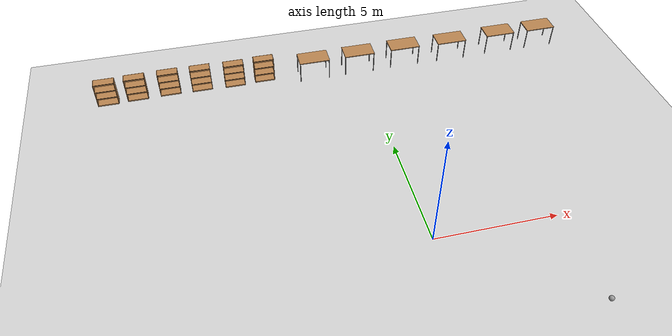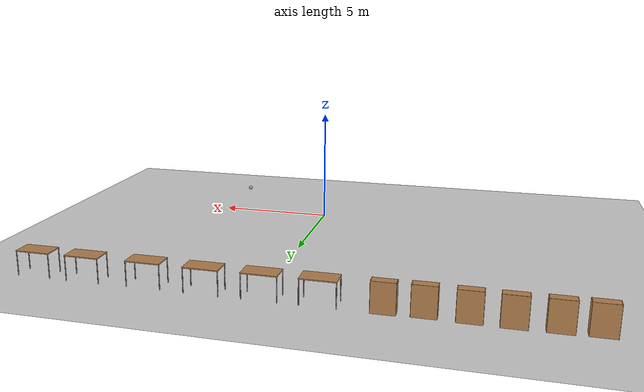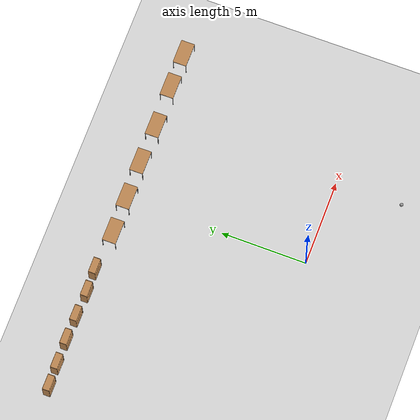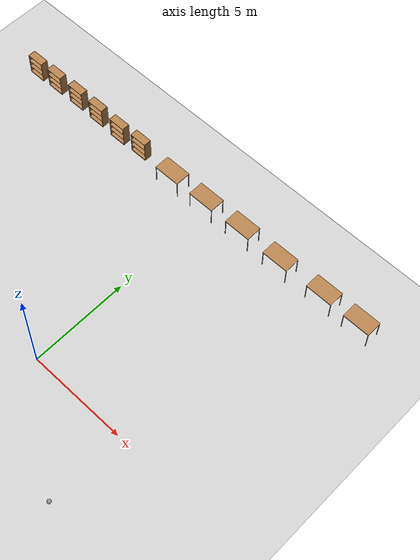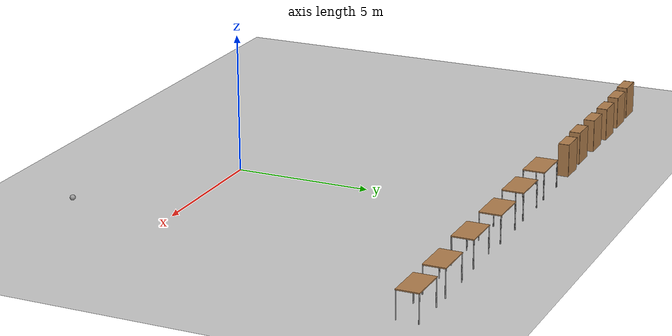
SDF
<sdf version="1.6">
 <world name="default">
  <model name="ground_plane">
   <static>1</static>
   <link name="link">
    <collision name="collision">
     <geometry><plane><normal>0 0 1</normal><size>100 100</size></plane></geometry>
     <surface><friction><ode><mu>100</mu><mu2>50</mu2></ode></friction></surface>
    </collision>
    <visual name="visual">
     <cast_shadows>0</cast_shadows>
     <geometry><plane><normal>0 0 1</normal><size>100 100</size></plane></geometry>
     <material>
      <script><uri>file://media/materials/scripts/gazebo.material</uri><name>Gazebo/Grey</name></script>
     </material>
    </visual>
   </link>
  </model>
  <model name="Untitled">
   <link name="link_0">
    <inertial>
     <mass>1</mass>
     <inertia><ixx>0.1</ixx><ixy>0</ixy><ixz>0</ixz><iyy>0.1</iyy><iyz>0</iyz><izz>0.1</izz></inertia>
    </inertial>
    <visual name="visual">
     <geometry><sphere><radius>0.1</radius></sphere></geometry>
     <material>
      <lighting>1</lighting>
      <script><uri>file://media/materials/scripts/gazebo.material</uri><name>Gazebo/Grey</name></script>
      <ambient>1 1 1 1</ambient>
      <diffuse>1 1 1 1</diffuse>
      <specular>1 1 1 1</specular>
      <emissive>1 1 1 1</emissive>
      <shader type="vertex"><normal_map>__default__</normal_map></shader>
     </material>
    </visual>
    <collision name="collision">
     <geometry><sphere><radius>0.1</radius></sphere></geometry>
     <surface>
      <friction>
       <ode><mu>1</mu><mu2>1</mu2><fdir1>0 0 0</fdir1><slip1>0</slip1><slip2>0</slip2></ode>
       <torsional>
        <coefficient>1</coefficient>
        <patch_radius>0</patch_radius>
        <surface_radius>0</surface_radius>
        <use_patch_radius>1</use_patch_radius>
        <ode><slip>0</slip></ode>
       </torsional>
      </friction>
      <bounce><restitution_coefficient>0</restitution_coefficient><threshold>1e+06</threshold></bounce>
      <contact>
       <collide_without_contact>0</collide_without_contact>
       <collide_without_contact_bitmask>1</collide_without_contact_bitmask>
       <collide_bitmask>1</collide_bitmask>
       <ode>
        <soft_cfm>0</soft_cfm>
        <soft_erp>0.2</soft_erp>
        <kp>1e+13</kp>
        <kd>1</kd>
        <max_vel>0.01</max_vel>
        <min_depth>0</min_depth>
       </ode>
       <bullet>
        <split_impulse>1</split_impulse>
        <split_impulse_penetration_threshold>-0.01</split_impulse_penetration_threshold>
        <soft_cfm>0</soft_cfm>
        <soft_erp>0.2</soft_erp>
        <kp>1e+13</kp>
        <kd>1</kd>
       </bullet>
      </contact>
     </surface>
    </collision>
   </link>
   <static>0</static>
   <pose>5.06703 -3.86628 0.1 0 -0 0</pose>
  </model>
  <model name="building"><pose>-3.25886 19.1437 0 0 -0 0</pose><static>1</static></model>
  <model name="bookshelf">
   <static>1</static>
   <link name="link">
    <inertial><mass>1</mass></inertial>
    <collision name="back">
     <pose>0 0.005 0.6 0 -0 0</pose>
     <geometry><box><size>0.9 0.01 1.2</size></box></geometry>
    </collision>
    <visual name="visual1">
     <pose>0 0.005 0.6 0 -0 0</pose>
     <geometry><box><size>0.9 0.01 1.2</size></box></geometry>
     <material>
      <script><uri>file://media/materials/scripts/gazebo.material</uri><name>Gazebo/Wood</name></script>
     </material>
    </visual>
    <collision name="left_side">
     <pose>0.45 -0.195 0.6 0 -0 0</pose>
     <geometry><box><size>0.02 0.4 1.2</size></box></geometry>
    </collision>
    <visual name="visual2">
     <pose>0.45 -0.195 0.6 0 -0 0</pose>
     <geometry><box><size>0.02 0.4 1.2</size></box></geometry>
     <material>
      <script><uri>file://media/materials/scripts/gazebo.material</uri><name>Gazebo/Wood</name></script>
     </material>
    </visual>
    <collision name="right_side">
     <pose>-0.45 -0.195 0.6 0 -0 0</pose>
     <geometry><box><size>0.02 0.4 1.2</size></box></geometry>
    </collision>
    <visual name="visual3">
     <pose>-0.45 -0.195 0.6 0 -0 0</pose>
     <geometry><box><size>0.02 0.4 1.2</size></box></geometry>
     <material>
      <script><uri>file://media/materials/scripts/gazebo.material</uri><name>Gazebo/Wood</name></script>
     </material>
    </visual>
    <collision name="bottom">
     <pose>0 -0.195 0.03 0 -0 0</pose>
     <geometry><box><size>0.88 0.4 0.06</size></box></geometry>
    </collision>
    <visual name="visual4">
     <pose>0 -0.195 0.03 0 -0 0</pose>
     <geometry><box><size>0.88 0.4 0.06</size></box></geometry>
     <material>
      <script><uri>file://media/materials/scripts/gazebo.material</uri><name>Gazebo/Wood</name></script>
     </material>
    </visual>
    <collision name="top">
     <pose>0 -0.195 1.19 0 -0 0</pose>
     <geometry><box><size>0.88 0.4 0.02</size></box></geometry>
    </collision>
    <visual name="visual5">
     <pose>0 -0.195 1.19 0 -0 0</pose>
     <geometry><box><size>0.88 0.4 0.02</size></box></geometry>
     <material>
      <script><uri>file://media/materials/scripts/gazebo.material</uri><name>Gazebo/Wood</name></script>
     </material>
    </visual>
    <collision name="low_shelf">
     <pose>0 -0.195 0.43 0 -0 0</pose>
     <geometry><box><size>0.88 0.4 0.02</size></box></geometry>
    </collision>
    <visual name="visual6">
     <pose>0 -0.195 0.43 0 -0 0</pose>
     <geometry><box><size>0.88 0.4 0.02</size></box></geometry>
     <material>
      <script><uri>file://media/materials/scripts/gazebo.material</uri><name>Gazebo/Wood</name></script>
     </material>
    </visual>
    <collision name="high_shelf">
     <pose>0 -0.195 0.8 0 -0 0</pose>
     <geometry><box><size>0.88 0.4 0.02</size></box></geometry>
    </collision>
    <visual name="visual7">
     <pose>0 -0.195 0.8 0 -0 0</pose>
     <geometry><box><size>0.88 0.4 0.02</size></box></geometry>
     <material>
      <script><uri>file://media/materials/scripts/gazebo.material</uri><name>Gazebo/Wood</name></script>
     </material>
    </visual>
   </link>
   <pose>-10.3744 10.9607 0 0 -0 0</pose>
  </model>
  <model name="bookshelf_clone">
   <static>1</static>
   <link name="link">
    <inertial><mass>1</mass></inertial>
    <collision name="back">
     <pose>0 0.005 0.6 0 -0 0</pose>
     <geometry><box><size>0.9 0.01 1.2</size></box></geometry>
    </collision>
    <visual name="visual1">
     <pose>0 0.005 0.6 0 -0 0</pose>
     <geometry><box><size>0.9 0.01 1.2</size></box></geometry>
     <material>
      <script><uri>file://media/materials/scripts/gazebo.material</uri><name>Gazebo/Wood</name></script>
     </material>
    </visual>
    <collision name="left_side">
     <pose>0.45 -0.195 0.6 0 -0 0</pose>
     <geometry><box><size>0.02 0.4 1.2</size></box></geometry>
    </collision>
    <visual name="visual2">
     <pose>0.45 -0.195 0.6 0 -0 0</pose>
     <geometry><box><size>0.02 0.4 1.2</size></box></geometry>
     <material>
      <script><uri>file://media/materials/scripts/gazebo.material</uri><name>Gazebo/Wood</name></script>
     </material>
    </visual>
    <collision name="right_side">
     <pose>-0.45 -0.195 0.6 0 -0 0</pose>
     <geometry><box><size>0.02 0.4 1.2</size></box></geometry>
    </collision>
    <visual name="visual3">
     <pose>-0.45 -0.195 0.6 0 -0 0</pose>
     <geometry><box><size>0.02 0.4 1.2</size></box></geometry>
     <material>
      <script><uri>file://media/materials/scripts/gazebo.material</uri><name>Gazebo/Wood</name></script>
     </material>
    </visual>
    <collision name="bottom">
     <pose>0 -0.195 0.03 0 -0 0</pose>
     <geometry><box><size>0.88 0.4 0.06</size></box></geometry>
    </collision>
    <visual name="visual4">
     <pose>0 -0.195 0.03 0 -0 0</pose>
     <geometry><box><size>0.88 0.4 0.06</size></box></geometry>
     <material>
      <script><uri>file://media/materials/scripts/gazebo.material</uri><name>Gazebo/Wood</name></script>
     </material>
    </visual>
    <collision name="top">
     <pose>0 -0.195 1.19 0 -0 0</pose>
     <geometry><box><size>0.88 0.4 0.02</size></box></geometry>
    </collision>
    <visual name="visual5">
     <pose>0 -0.195 1.19 0 -0 0</pose>
     <geometry><box><size>0.88 0.4 0.02</size></box></geometry>
     <material>
      <script><uri>file://media/materials/scripts/gazebo.material</uri><name>Gazebo/Wood</name></script>
     </material>
    </visual>
    <collision name="low_shelf">
     <pose>0 -0.195 0.43 0 -0 0</pose>
     <geometry><box><size>0.88 0.4 0.02</size></box></geometry>
    </collision>
    <visual name="visual6">
     <pose>0 -0.195 0.43 0 -0 0</pose>
     <geometry><box><size>0.88 0.4 0.02</size></box></geometry>
     <material>
      <script><uri>file://media/materials/scripts/gazebo.material</uri><name>Gazebo/Wood</name></script>
     </material>
    </visual>
    <collision name="high_shelf">
     <pose>0 -0.195 0.8 0 -0 0</pose>
     <geometry><box><size>0.88 0.4 0.02</size></box></geometry>
    </collision>
    <visual name="visual7">
     <pose>0 -0.195 0.8 0 -0 0</pose>
     <geometry><box><size>0.88 0.4 0.02</size></box></geometry>
     <material>
      <script><uri>file://media/materials/scripts/gazebo.material</uri><name>Gazebo/Wood</name></script>
     </material>
    </visual>
   </link>
   <pose>-8.909 10.9943 0 0 -0 0</pose>
  </model>
  <model name="bookshelf_clone_0">
   <static>1</static>
   <link name="link">
    <inertial><mass>1</mass></inertial>
    <collision name="back">
     <pose>0 0.005 0.6 0 -0 0</pose>
     <geometry><box><size>0.9 0.01 1.2</size></box></geometry>
    </collision>
    <visual name="visual1">
     <pose>0 0.005 0.6 0 -0 0</pose>
     <geometry><box><size>0.9 0.01 1.2</size></box></geometry>
     <material>
      <script><uri>file://media/materials/scripts/gazebo.material</uri><name>Gazebo/Wood</name></script>
     </material>
    </visual>
    <collision name="left_side">
     <pose>0.45 -0.195 0.6 0 -0 0</pose>
     <geometry><box><size>0.02 0.4 1.2</size></box></geometry>
    </collision>
    <visual name="visual2">
     <pose>0.45 -0.195 0.6 0 -0 0</pose>
     <geometry><box><size>0.02 0.4 1.2</size></box></geometry>
     <material>
      <script><uri>file://media/materials/scripts/gazebo.material</uri><name>Gazebo/Wood</name></script>
     </material>
    </visual>
    <collision name="right_side">
     <pose>-0.45 -0.195 0.6 0 -0 0</pose>
     <geometry><box><size>0.02 0.4 1.2</size></box></geometry>
    </collision>
    <visual name="visual3">
     <pose>-0.45 -0.195 0.6 0 -0 0</pose>
     <geometry><box><size>0.02 0.4 1.2</size></box></geometry>
     <material>
      <script><uri>file://media/materials/scripts/gazebo.material</uri><name>Gazebo/Wood</name></script>
     </material>
    </visual>
    <collision name="bottom">
     <pose>0 -0.195 0.03 0 -0 0</pose>
     <geometry><box><size>0.88 0.4 0.06</size></box></geometry>
    </collision>
    <visual name="visual4">
     <pose>0 -0.195 0.03 0 -0 0</pose>
     <geometry><box><size>0.88 0.4 0.06</size></box></geometry>
     <material>
      <script><uri>file://media/materials/scripts/gazebo.material</uri><name>Gazebo/Wood</name></script>
     </material>
    </visual>
    <collision name="top">
     <pose>0 -0.195 1.19 0 -0 0</pose>
     <geometry><box><size>0.88 0.4 0.02</size></box></geometry>
    </collision>
    <visual name="visual5">
     <pose>0 -0.195 1.19 0 -0 0</pose>
     <geometry><box><size>0.88 0.4 0.02</size></box></geometry>
     <material>
      <script><uri>file://media/materials/scripts/gazebo.material</uri><name>Gazebo/Wood</name></script>
     </material>
    </visual>
    <collision name="low_shelf">
     <pose>0 -0.195 0.43 0 -0 0</pose>
     <geometry><box><size>0.88 0.4 0.02</size></box></geometry>
    </collision>
    <visual name="visual6">
     <pose>0 -0.195 0.43 0 -0 0</pose>
     <geometry><box><size>0.88 0.4 0.02</size></box></geometry>
     <material>
      <script><uri>file://media/materials/scripts/gazebo.material</uri><name>Gazebo/Wood</name></script>
     </material>
    </visual>
    <collision name="high_shelf">
     <pose>0 -0.195 0.8 0 -0 0</pose>
     <geometry><box><size>0.88 0.4 0.02</size></box></geometry>
    </collision>
    <visual name="visual7">
     <pose>0 -0.195 0.8 0 -0 0</pose>
     <geometry><box><size>0.88 0.4 0.02</size></box></geometry>
     <material>
      <script><uri>file://media/materials/scripts/gazebo.material</uri><name>Gazebo/Wood</name></script>
     </material>
    </visual>
   </link>
   <pose>-7.46858 10.9752 0 0 -0 0</pose>
  </model>
  <model name="bookshelf_clone_1">
   <static>1</static>
   <link name="link">
    <inertial><mass>1</mass></inertial>
    <collision name="back">
     <pose>0 0.005 0.6 0 -0 0</pose>
     <geometry><box><size>0.9 0.01 1.2</size></box></geometry>
    </collision>
    <visual name="visual1">
     <pose>0 0.005 0.6 0 -0 0</pose>
     <geometry><box><size>0.9 0.01 1.2</size></box></geometry>
     <material>
      <script><uri>file://media/materials/scripts/gazebo.material</uri><name>Gazebo/Wood</name></script>
     </material>
    </visual>
    <collision name="left_side">
     <pose>0.45 -0.195 0.6 0 -0 0</pose>
     <geometry><box><size>0.02 0.4 1.2</size></box></geometry>
    </collision>
    <visual name="visual2">
     <pose>0.45 -0.195 0.6 0 -0 0</pose>
     <geometry><box><size>0.02 0.4 1.2</size></box></geometry>
     <material>
      <script><uri>file://media/materials/scripts/gazebo.material</uri><name>Gazebo/Wood</name></script>
     </material>
    </visual>
    <collision name="right_side">
     <pose>-0.45 -0.195 0.6 0 -0 0</pose>
     <geometry><box><size>0.02 0.4 1.2</size></box></geometry>
    </collision>
    <visual name="visual3">
     <pose>-0.45 -0.195 0.6 0 -0 0</pose>
     <geometry><box><size>0.02 0.4 1.2</size></box></geometry>
     <material>
      <script><uri>file://media/materials/scripts/gazebo.material</uri><name>Gazebo/Wood</name></script>
     </material>
    </visual>
    <collision name="bottom">
     <pose>0 -0.195 0.03 0 -0 0</pose>
     <geometry><box><size>0.88 0.4 0.06</size></box></geometry>
    </collision>
    <visual name="visual4">
     <pose>0 -0.195 0.03 0 -0 0</pose>
     <geometry><box><size>0.88 0.4 0.06</size></box></geometry>
     <material>
      <script><uri>file://media/materials/scripts/gazebo.material</uri><name>Gazebo/Wood</name></script>
     </material>
    </visual>
    <collision name="top">
     <pose>0 -0.195 1.19 0 -0 0</pose>
     <geometry><box><size>0.88 0.4 0.02</size></box></geometry>
    </collision>
    <visual name="visual5">
     <pose>0 -0.195 1.19 0 -0 0</pose>
     <geometry><box><size>0.88 0.4 0.02</size></box></geometry>
     <material>
      <script><uri>file://media/materials/scripts/gazebo.material</uri><name>Gazebo/Wood</name></script>
     </material>
    </visual>
    <collision name="low_shelf">
     <pose>0 -0.195 0.43 0 -0 0</pose>
     <geometry><box><size>0.88 0.4 0.02</size></box></geometry>
    </collision>
    <visual name="visual6">
     <pose>0 -0.195 0.43 0 -0 0</pose>
     <geometry><box><size>0.88 0.4 0.02</size></box></geometry>
     <material>
      <script><uri>file://media/materials/scripts/gazebo.material</uri><name>Gazebo/Wood</name></script>
     </material>
    </visual>
    <collision name="high_shelf">
     <pose>0 -0.195 0.8 0 -0 0</pose>
     <geometry><box><size>0.88 0.4 0.02</size></box></geometry>
    </collision>
    <visual name="visual7">
     <pose>0 -0.195 0.8 0 -0 0</pose>
     <geometry><box><size>0.88 0.4 0.02</size></box></geometry>
     <material>
      <script><uri>file://media/materials/scripts/gazebo.material</uri><name>Gazebo/Wood</name></script>
     </material>
    </visual>
   </link>
   <pose>-5.95386 10.9351 0 0 -0 0</pose>
  </model>
  <model name="bookshelf_clone_2">
   <static>1</static>
   <link name="link">
    <inertial><mass>1</mass></inertial>
    <collision name="back">
     <pose>0 0.005 0.6 0 -0 0</pose>
     <geometry><box><size>0.9 0.01 1.2</size></box></geometry>
    </collision>
    <visual name="visual1">
     <pose>0 0.005 0.6 0 -0 0</pose>
     <geometry><box><size>0.9 0.01 1.2</size></box></geometry>
     <material>
      <script><uri>file://media/materials/scripts/gazebo.material</uri><name>Gazebo/Wood</name></script>
     </material>
    </visual>
    <collision name="left_side">
     <pose>0.45 -0.195 0.6 0 -0 0</pose>
     <geometry><box><size>0.02 0.4 1.2</size></box></geometry>
    </collision>
    <visual name="visual2">
     <pose>0.45 -0.195 0.6 0 -0 0</pose>
     <geometry><box><size>0.02 0.4 1.2</size></box></geometry>
     <material>
      <script><uri>file://media/materials/scripts/gazebo.material</uri><name>Gazebo/Wood</name></script>
     </material>
    </visual>
    <collision name="right_side">
     <pose>-0.45 -0.195 0.6 0 -0 0</pose>
     <geometry><box><size>0.02 0.4 1.2</size></box></geometry>
    </collision>
    <visual name="visual3">
     <pose>-0.45 -0.195 0.6 0 -0 0</pose>
     <geometry><box><size>0.02 0.4 1.2</size></box></geometry>
     <material>
      <script><uri>file://media/materials/scripts/gazebo.material</uri><name>Gazebo/Wood</name></script>
     </material>
    </visual>
    <collision name="bottom">
     <pose>0 -0.195 0.03 0 -0 0</pose>
     <geometry><box><size>0.88 0.4 0.06</size></box></geometry>
    </collision>
    <visual name="visual4">
     <pose>0 -0.195 0.03 0 -0 0</pose>
     <geometry><box><size>0.88 0.4 0.06</size></box></geometry>
     <material>
      <script><uri>file://media/materials/scripts/gazebo.material</uri><name>Gazebo/Wood</name></script>
     </material>
    </visual>
    <collision name="top">
     <pose>0 -0.195 1.19 0 -0 0</pose>
     <geometry><box><size>0.88 0.4 0.02</size></box></geometry>
    </collision>
    <visual name="visual5">
     <pose>0 -0.195 1.19 0 -0 0</pose>
     <geometry><box><size>0.88 0.4 0.02</size></box></geometry>
     <material>
      <script><uri>file://media/materials/scripts/gazebo.material</uri><name>Gazebo/Wood</name></script>
     </material>
    </visual>
    <collision name="low_shelf">
     <pose>0 -0.195 0.43 0 -0 0</pose>
     <geometry><box><size>0.88 0.4 0.02</size></box></geometry>
    </collision>
    <visual name="visual6">
     <pose>0 -0.195 0.43 0 -0 0</pose>
     <geometry><box><size>0.88 0.4 0.02</size></box></geometry>
     <material>
      <script><uri>file://media/materials/scripts/gazebo.material</uri><name>Gazebo/Wood</name></script>
     </material>
    </visual>
    <collision name="high_shelf">
     <pose>0 -0.195 0.8 0 -0 0</pose>
     <geometry><box><size>0.88 0.4 0.02</size></box></geometry>
    </collision>
    <visual name="visual7">
     <pose>0 -0.195 0.8 0 -0 0</pose>
     <geometry><box><size>0.88 0.4 0.02</size></box></geometry>
     <material>
      <script><uri>file://media/materials/scripts/gazebo.material</uri><name>Gazebo/Wood</name></script>
     </material>
    </visual>
   </link>
   <pose>-4.56293 10.9978 0 0 -0 0</pose>
  </model>
  <model name="bookshelf_clone_3">
   <static>1</static>
   <link name="link">
    <inertial><mass>1</mass></inertial>
    <collision name="back">
     <pose>0 0.005 0.6 0 -0 0</pose>
     <geometry><box><size>0.9 0.01 1.2</size></box></geometry>
    </collision>
    <visual name="visual1">
     <pose>0 0.005 0.6 0 -0 0</pose>
     <geometry><box><size>0.9 0.01 1.2</size></box></geometry>
     <material>
      <script><uri>file://media/materials/scripts/gazebo.material</uri><name>Gazebo/Wood</name></script>
     </material>
    </visual>
    <collision name="left_side">
     <pose>0.45 -0.195 0.6 0 -0 0</pose>
     <geometry><box><size>0.02 0.4 1.2</size></box></geometry>
    </collision>
    <visual name="visual2">
     <pose>0.45 -0.195 0.6 0 -0 0</pose>
     <geometry><box><size>0.02 0.4 1.2</size></box></geometry>
     <material>
      <script><uri>file://media/materials/scripts/gazebo.material</uri><name>Gazebo/Wood</name></script>
     </material>
    </visual>
    <collision name="right_side">
     <pose>-0.45 -0.195 0.6 0 -0 0</pose>
     <geometry><box><size>0.02 0.4 1.2</size></box></geometry>
    </collision>
    <visual name="visual3">
     <pose>-0.45 -0.195 0.6 0 -0 0</pose>
     <geometry><box><size>0.02 0.4 1.2</size></box></geometry>
     <material>
      <script><uri>file://media/materials/scripts/gazebo.material</uri><name>Gazebo/Wood</name></script>
     </material>
    </visual>
    <collision name="bottom">
     <pose>0 -0.195 0.03 0 -0 0</pose>
     <geometry><box><size>0.88 0.4 0.06</size></box></geometry>
    </collision>
    <visual name="visual4">
     <pose>0 -0.195 0.03 0 -0 0</pose>
     <geometry><box><size>0.88 0.4 0.06</size></box></geometry>
     <material>
      <script><uri>file://media/materials/scripts/gazebo.material</uri><name>Gazebo/Wood</name></script>
     </material>
    </visual>
    <collision name="top">
     <pose>0 -0.195 1.19 0 -0 0</pose>
     <geometry><box><size>0.88 0.4 0.02</size></box></geometry>
    </collision>
    <visual name="visual5">
     <pose>0 -0.195 1.19 0 -0 0</pose>
     <geometry><box><size>0.88 0.4 0.02</size></box></geometry>
     <material>
      <script><uri>file://media/materials/scripts/gazebo.material</uri><name>Gazebo/Wood</name></script>
     </material>
    </visual>
    <collision name="low_shelf">
     <pose>0 -0.195 0.43 0 -0 0</pose>
     <geometry><box><size>0.88 0.4 0.02</size></box></geometry>
    </collision>
    <visual name="visual6">
     <pose>0 -0.195 0.43 0 -0 0</pose>
     <geometry><box><size>0.88 0.4 0.02</size></box></geometry>
     <material>
      <script><uri>file://media/materials/scripts/gazebo.material</uri><name>Gazebo/Wood</name></script>
     </material>
    </visual>
    <collision name="high_shelf">
     <pose>0 -0.195 0.8 0 -0 0</pose>
     <geometry><box><size>0.88 0.4 0.02</size></box></geometry>
    </collision>
    <visual name="visual7">
     <pose>0 -0.195 0.8 0 -0 0</pose>
     <geometry><box><size>0.88 0.4 0.02</size></box></geometry>
     <material>
      <script><uri>file://media/materials/scripts/gazebo.material</uri><name>Gazebo/Wood</name></script>
     </material>
    </visual>
   </link>
   <pose>-11.6828 10.9115 0 0 -0 0</pose>
  </model>
  <model name="table_clone_2">
   <static>0</static>
   <link name="link">
    <collision name="surface">
     <pose>0 0 1 0 -0 0</pose>
     <geometry><box><size>1.5 0.8 0.03</size></box></geometry>
     <surface><friction><ode><mu>0.6</mu><mu2>0.6</mu2></ode></friction></surface>
    </collision>
    <visual name="visual1">
     <pose>0 0 1 0 -0 0</pose>
     <geometry><box><size>1.4 0.8 0.04</size></box></geometry>
     <material>
      <script><uri>file://media/materials/scripts/gazebo.material</uri><name>Gazebo/Wood</name></script>
     </material>
    </visual>
    <collision name="front_left_leg">
     <pose>0.68 0.38 0.5 0 -0 0</pose>
     <geometry><cylinder><radius>0.02</radius><length>1</length></cylinder></geometry>
    </collision>
    <visual name="front_left_leg">
     <pose>0.68 0.38 0.5 0 -0 0</pose>
     <geometry><cylinder><radius>0.02</radius><length>1</length></cylinder></geometry>
     <material>
      <script><uri>file://media/materials/scripts/gazebo.material</uri><name>Gazebo/Grey</name></script>
     </material>
    </visual>
    <collision name="front_right_leg">
     <pose>0.68 -0.38 0.5 0 -0 0</pose>
     <geometry><cylinder><radius>0.02</radius><length>1</length></cylinder></geometry>
    </collision>
    <visual name="front_right_leg">
     <pose>0.68 -0.38 0.5 0 -0 0</pose>
     <geometry><cylinder><radius>0.02</radius><length>1</length></cylinder></geometry>
     <material>
      <script><uri>file://media/materials/scripts/gazebo.material</uri><name>Gazebo/Grey</name></script>
     </material>
    </visual>
    <collision name="back_right_leg">
     <pose>-0.68 -0.38 0.5 0 -0 0</pose>
     <geometry><cylinder><radius>0.02</radius><length>1</length></cylinder></geometry>
    </collision>
    <visual name="back_right_leg">
     <pose>-0.68 -0.38 0.5 0 -0 0</pose>
     <geometry><cylinder><radius>0.02</radius><length>1</length></cylinder></geometry>
     <material>
      <script><uri>file://media/materials/scripts/gazebo.material</uri><name>Gazebo/Grey</name></script>
     </material>
    </visual>
    <collision name="back_left_leg">
     <pose>-0.68 0.38 0.5 0 -0 0</pose>
     <geometry><cylinder><radius>0.02</radius><length>1</length></cylinder></geometry>
    </collision>
    <visual name="back_left_leg">
     <pose>-0.68 0.38 0.5 0 -0 0</pose>
     <geometry><cylinder><radius>0.02</radius><length>1</length></cylinder></geometry>
     <material>
      <script><uri>file://media/materials/scripts/gazebo.material</uri><name>Gazebo/Grey</name></script>
     </material>
    </visual>
    <inertial>
     <inertia><ixx>1</ixx><ixy>0</ixy><ixz>0</ixz><iyy>1</iyy><iyz>0</iyz><izz>1</izz></inertia>
     <mass>1</mass>
    </inertial>
   </link>
   <pose>-2.25862 10.5869 -2e-06 0 -0 0</pose>
  </model>
  <model name="table_clone_3">
   <static>0</static>
   <link name="link">
    <collision name="surface">
     <pose>0 0 1 0 -0 0</pose>
     <geometry><box><size>1.5 0.8 0.03</size></box></geometry>
     <surface><friction><ode><mu>0.6</mu><mu2>0.6</mu2></ode></friction></surface>
    </collision>
    <visual name="visual1">
     <pose>0 0 1 0 -0 0</pose>
     <geometry><box><size>1.4 0.8 0.04</size></box></geometry>
     <material>
      <script><uri>file://media/materials/scripts/gazebo.material</uri><name>Gazebo/Wood</name></script>
     </material>
    </visual>
    <collision name="front_left_leg">
     <pose>0.68 0.38 0.5 0 -0 0</pose>
     <geometry><cylinder><radius>0.02</radius><length>1</length></cylinder></geometry>
    </collision>
    <visual name="front_left_leg">
     <pose>0.68 0.38 0.5 0 -0 0</pose>
     <geometry><cylinder><radius>0.02</radius><length>1</length></cylinder></geometry>
     <material>
      <script><uri>file://media/materials/scripts/gazebo.material</uri><name>Gazebo/Grey</name></script>
     </material>
    </visual>
    <collision name="front_right_leg">
     <pose>0.68 -0.38 0.5 0 -0 0</pose>
     <geometry><cylinder><radius>0.02</radius><length>1</length></cylinder></geometry>
    </collision>
    <visual name="front_right_leg">
     <pose>0.68 -0.38 0.5 0 -0 0</pose>
     <geometry><cylinder><radius>0.02</radius><length>1</length></cylinder></geometry>
     <material>
      <script><uri>file://media/materials/scripts/gazebo.material</uri><name>Gazebo/Grey</name></script>
     </material>
    </visual>
    <collision name="back_right_leg">
     <pose>-0.68 -0.38 0.5 0 -0 0</pose>
     <geometry><cylinder><radius>0.02</radius><length>1</length></cylinder></geometry>
    </collision>
    <visual name="back_right_leg">
     <pose>-0.68 -0.38 0.5 0 -0 0</pose>
     <geometry><cylinder><radius>0.02</radius><length>1</length></cylinder></geometry>
     <material>
      <script><uri>file://media/materials/scripts/gazebo.material</uri><name>Gazebo/Grey</name></script>
     </material>
    </visual>
    <collision name="back_left_leg">
     <pose>-0.68 0.38 0.5 0 -0 0</pose>
     <geometry><cylinder><radius>0.02</radius><length>1</length></cylinder></geometry>
    </collision>
    <visual name="back_left_leg">
     <pose>-0.68 0.38 0.5 0 -0 0</pose>
     <geometry><cylinder><radius>0.02</radius><length>1</length></cylinder></geometry>
     <material>
      <script><uri>file://media/materials/scripts/gazebo.material</uri><name>Gazebo/Grey</name></script>
     </material>
    </visual>
    <inertial>
     <inertia><ixx>1</ixx><ixy>0</ixy><ixz>0</ixz><iyy>1</iyy><iyz>0</iyz><izz>1</izz></inertia>
     <mass>1</mass>
    </inertial>
   </link>
   <pose>-0.10841 10.6155 -2e-06 0 -0 0</pose>
  </model>
  <model name="table_clone_4">
   <static>0</static>
   <link name="link">
    <collision name="surface">
     <pose>0 0 1 0 -0 0</pose>
     <geometry><box><size>1.5 0.8 0.03</size></box></geometry>
     <surface><friction><ode><mu>0.6</mu><mu2>0.6</mu2></ode></friction></surface>
    </collision>
    <visual name="visual1">
     <pose>0 0 1 0 -0 0</pose>
     <geometry><box><size>1.4 0.8 0.04</size></box></geometry>
     <material>
      <script><uri>file://media/materials/scripts/gazebo.material</uri><name>Gazebo/Wood</name></script>
     </material>
    </visual>
    <collision name="front_left_leg">
     <pose>0.68 0.38 0.5 0 -0 0</pose>
     <geometry><cylinder><radius>0.02</radius><length>1</length></cylinder></geometry>
    </collision>
    <visual name="front_left_leg">
     <pose>0.68 0.38 0.5 0 -0 0</pose>
     <geometry><cylinder><radius>0.02</radius><length>1</length></cylinder></geometry>
     <material>
      <script><uri>file://media/materials/scripts/gazebo.material</uri><name>Gazebo/Grey</name></script>
     </material>
    </visual>
    <collision name="front_right_leg">
     <pose>0.68 -0.38 0.5 0 -0 0</pose>
     <geometry><cylinder><radius>0.02</radius><length>1</length></cylinder></geometry>
    </collision>
    <visual name="front_right_leg">
     <pose>0.68 -0.38 0.5 0 -0 0</pose>
     <geometry><cylinder><radius>0.02</radius><length>1</length></cylinder></geometry>
     <material>
      <script><uri>file://media/materials/scripts/gazebo.material</uri><name>Gazebo/Grey</name></script>
     </material>
    </visual>
    <collision name="back_right_leg">
     <pose>-0.68 -0.38 0.5 0 -0 0</pose>
     <geometry><cylinder><radius>0.02</radius><length>1</length></cylinder></geometry>
    </collision>
    <visual name="back_right_leg">
     <pose>-0.68 -0.38 0.5 0 -0 0</pose>
     <geometry><cylinder><radius>0.02</radius><length>1</length></cylinder></geometry>
     <material>
      <script><uri>file://media/materials/scripts/gazebo.material</uri><name>Gazebo/Grey</name></script>
     </material>
    </visual>
    <collision name="back_left_leg">
     <pose>-0.68 0.38 0.5 0 -0 0</pose>
     <geometry><cylinder><radius>0.02</radius><length>1</length></cylinder></geometry>
    </collision>
    <visual name="back_left_leg">
     <pose>-0.68 0.38 0.5 0 -0 0</pose>
     <geometry><cylinder><radius>0.02</radius><length>1</length></cylinder></geometry>
     <material>
      <script><uri>file://media/materials/scripts/gazebo.material</uri><name>Gazebo/Grey</name></script>
     </material>
    </visual>
    <inertial>
     <inertia><ixx>1</ixx><ixy>0</ixy><ixz>0</ixz><iyy>1</iyy><iyz>0</iyz><izz>1</izz></inertia>
     <mass>1</mass>
    </inertial>
   </link>
   <pose>2.11053 10.6466 -2e-06 0 -0 0</pose>
  </model>
  <model name="table_clone_5">
   <static>0</static>
   <link name="link">
    <collision name="surface">
     <pose>0 0 1 0 -0 0</pose>
     <geometry><box><size>1.5 0.8 0.03</size></box></geometry>
     <surface><friction><ode><mu>0.6</mu><mu2>0.6</mu2></ode></friction></surface>
    </collision>
    <visual name="visual1">
     <pose>0 0 1 0 -0 0</pose>
     <geometry><box><size>1.4 0.8 0.04</size></box></geometry>
     <material>
      <script><uri>file://media/materials/scripts/gazebo.material</uri><name>Gazebo/Wood</name></script>
     </material>
    </visual>
    <collision name="front_left_leg">
     <pose>0.68 0.38 0.5 0 -0 0</pose>
     <geometry><cylinder><radius>0.02</radius><length>1</length></cylinder></geometry>
    </collision>
    <visual name="front_left_leg">
     <pose>0.68 0.38 0.5 0 -0 0</pose>
     <geometry><cylinder><radius>0.02</radius><length>1</length></cylinder></geometry>
     <material>
      <script><uri>file://media/materials/scripts/gazebo.material</uri><name>Gazebo/Grey</name></script>
     </material>
    </visual>
    <collision name="front_right_leg">
     <pose>0.68 -0.38 0.5 0 -0 0</pose>
     <geometry><cylinder><radius>0.02</radius><length>1</length></cylinder></geometry>
    </collision>
    <visual name="front_right_leg">
     <pose>0.68 -0.38 0.5 0 -0 0</pose>
     <geometry><cylinder><radius>0.02</radius><length>1</length></cylinder></geometry>
     <material>
      <script><uri>file://media/materials/scripts/gazebo.material</uri><name>Gazebo/Grey</name></script>
     </material>
    </visual>
    <collision name="back_right_leg">
     <pose>-0.68 -0.38 0.5 0 -0 0</pose>
     <geometry><cylinder><radius>0.02</radius><length>1</length></cylinder></geometry>
    </collision>
    <visual name="back_right_leg">
     <pose>-0.68 -0.38 0.5 0 -0 0</pose>
     <geometry><cylinder><radius>0.02</radius><length>1</length></cylinder></geometry>
     <material>
      <script><uri>file://media/materials/scripts/gazebo.material</uri><name>Gazebo/Grey</name></script>
     </material>
    </visual>
    <collision name="back_left_leg">
     <pose>-0.68 0.38 0.5 0 -0 0</pose>
     <geometry><cylinder><radius>0.02</radius><length>1</length></cylinder></geometry>
    </collision>
    <visual name="back_left_leg">
     <pose>-0.68 0.38 0.5 0 -0 0</pose>
     <geometry><cylinder><radius>0.02</radius><length>1</length></cylinder></geometry>
     <material>
      <script><uri>file://media/materials/scripts/gazebo.material</uri><name>Gazebo/Grey</name></script>
     </material>
    </visual>
    <inertial>
     <inertia><ixx>1</ixx><ixy>0</ixy><ixz>0</ixz><iyy>1</iyy><iyz>0</iyz><izz>1</izz></inertia>
     <mass>1</mass>
    </inertial>
   </link>
   <pose>4.42559 10.6003 -2e-06 0 -0 0</pose>
  </model>
  <model name="table_clone_6">
   <static>0</static>
   <link name="link">
    <collision name="surface">
     <pose>0 0 1 0 -0 0</pose>
     <geometry><box><size>1.5 0.8 0.03</size></box></geometry>
     <surface><friction><ode><mu>0.6</mu><mu2>0.6</mu2></ode></friction></surface>
    </collision>
    <visual name="visual1">
     <pose>0 0 1 0 -0 0</pose>
     <geometry><box><size>1.4 0.8 0.04</size></box></geometry>
     <material>
      <script><uri>file://media/materials/scripts/gazebo.material</uri><name>Gazebo/Wood</name></script>
     </material>
    </visual>
    <collision name="front_left_leg">
     <pose>0.68 0.38 0.5 0 -0 0</pose>
     <geometry><cylinder><radius>0.02</radius><length>1</length></cylinder></geometry>
    </collision>
    <visual name="front_left_leg">
     <pose>0.68 0.38 0.5 0 -0 0</pose>
     <geometry><cylinder><radius>0.02</radius><length>1</length></cylinder></geometry>
     <material>
      <script><uri>file://media/materials/scripts/gazebo.material</uri><name>Gazebo/Grey</name></script>
     </material>
    </visual>
    <collision name="front_right_leg">
     <pose>0.68 -0.38 0.5 0 -0 0</pose>
     <geometry><cylinder><radius>0.02</radius><length>1</length></cylinder></geometry>
    </collision>
    <visual name="front_right_leg">
     <pose>0.68 -0.38 0.5 0 -0 0</pose>
     <geometry><cylinder><radius>0.02</radius><length>1</length></cylinder></geometry>
     <material>
      <script><uri>file://media/materials/scripts/gazebo.material</uri><name>Gazebo/Grey</name></script>
     </material>
    </visual>
    <collision name="back_right_leg">
     <pose>-0.68 -0.38 0.5 0 -0 0</pose>
     <geometry><cylinder><radius>0.02</radius><length>1</length></cylinder></geometry>
    </collision>
    <visual name="back_right_leg">
     <pose>-0.68 -0.38 0.5 0 -0 0</pose>
     <geometry><cylinder><radius>0.02</radius><length>1</length></cylinder></geometry>
     <material>
      <script><uri>file://media/materials/scripts/gazebo.material</uri><name>Gazebo/Grey</name></script>
     </material>
    </visual>
    <collision name="back_left_leg">
     <pose>-0.68 0.38 0.5 0 -0 0</pose>
     <geometry><cylinder><radius>0.02</radius><length>1</length></cylinder></geometry>
    </collision>
    <visual name="back_left_leg">
     <pose>-0.68 0.38 0.5 0 -0 0</pose>
     <geometry><cylinder><radius>0.02</radius><length>1</length></cylinder></geometry>
     <material>
      <script><uri>file://media/materials/scripts/gazebo.material</uri><name>Gazebo/Grey</name></script>
     </material>
    </visual>
    <inertial>
     <inertia><ixx>1</ixx><ixy>0</ixy><ixz>0</ixz><iyy>1</iyy><iyz>0</iyz><izz>1</izz></inertia>
     <mass>1</mass>
    </inertial>
   </link>
   <pose>6.92494 10.6569 -2e-06 0 -0 0</pose>
  </model>
  <model name="table_clone_7">
   <static>0</static>
   <link name="link">
    <collision name="surface">
     <pose>0 0 1 0 -0 0</pose>
     <geometry><box><size>1.5 0.8 0.03</size></box></geometry>
     <surface><friction><ode><mu>0.6</mu><mu2>0.6</mu2></ode></friction></surface>
    </collision>
    <visual name="visual1">
     <pose>0 0 1 0 -0 0</pose>
     <geometry><box><size>1.4 0.8 0.04</size></box></geometry>
     <material>
      <script><uri>file://media/materials/scripts/gazebo.material</uri><name>Gazebo/Wood</name></script>
     </material>
    </visual>
    <collision name="front_left_leg">
     <pose>0.68 0.38 0.5 0 -0 0</pose>
     <geometry><cylinder><radius>0.02</radius><length>1</length></cylinder></geometry>
    </collision>
    <visual name="front_left_leg">
     <pose>0.68 0.38 0.5 0 -0 0</pose>
     <geometry><cylinder><radius>0.02</radius><length>1</length></cylinder></geometry>
     <material>
      <script><uri>file://media/materials/scripts/gazebo.material</uri><name>Gazebo/Grey</name></script>
     </material>
    </visual>
    <collision name="front_right_leg">
     <pose>0.68 -0.38 0.5 0 -0 0</pose>
     <geometry><cylinder><radius>0.02</radius><length>1</length></cylinder></geometry>
    </collision>
    <visual name="front_right_leg">
     <pose>0.68 -0.38 0.5 0 -0 0</pose>
     <geometry><cylinder><radius>0.02</radius><length>1</length></cylinder></geometry>
     <material>
      <script><uri>file://media/materials/scripts/gazebo.material</uri><name>Gazebo/Grey</name></script>
     </material>
    </visual>
    <collision name="back_right_leg">
     <pose>-0.68 -0.38 0.5 0 -0 0</pose>
     <geometry><cylinder><radius>0.02</radius><length>1</length></cylinder></geometry>
    </collision>
    <visual name="back_right_leg">
     <pose>-0.68 -0.38 0.5 0 -0 0</pose>
     <geometry><cylinder><radius>0.02</radius><length>1</length></cylinder></geometry>
     <material>
      <script><uri>file://media/materials/scripts/gazebo.material</uri><name>Gazebo/Grey</name></script>
     </material>
    </visual>
    <collision name="back_left_leg">
     <pose>-0.68 0.38 0.5 0 -0 0</pose>
     <geometry><cylinder><radius>0.02</radius><length>1</length></cylinder></geometry>
    </collision>
    <visual name="back_left_leg">
     <pose>-0.68 0.38 0.5 0 -0 0</pose>
     <geometry><cylinder><radius>0.02</radius><length>1</length></cylinder></geometry>
     <material>
      <script><uri>file://media/materials/scripts/gazebo.material</uri><name>Gazebo/Grey</name></script>
     </material>
    </visual>
    <inertial>
     <inertia><ixx>1</ixx><ixy>0</ixy><ixz>0</ixz><iyy>1</iyy><iyz>0</iyz><izz>1</izz></inertia>
     <mass>1</mass>
    </inertial>
   </link>
   <pose>9.0118 10.6569 -2e-06 -1e-06 3e-06 0</pose>
  </model>
 </world>
</sdf>
